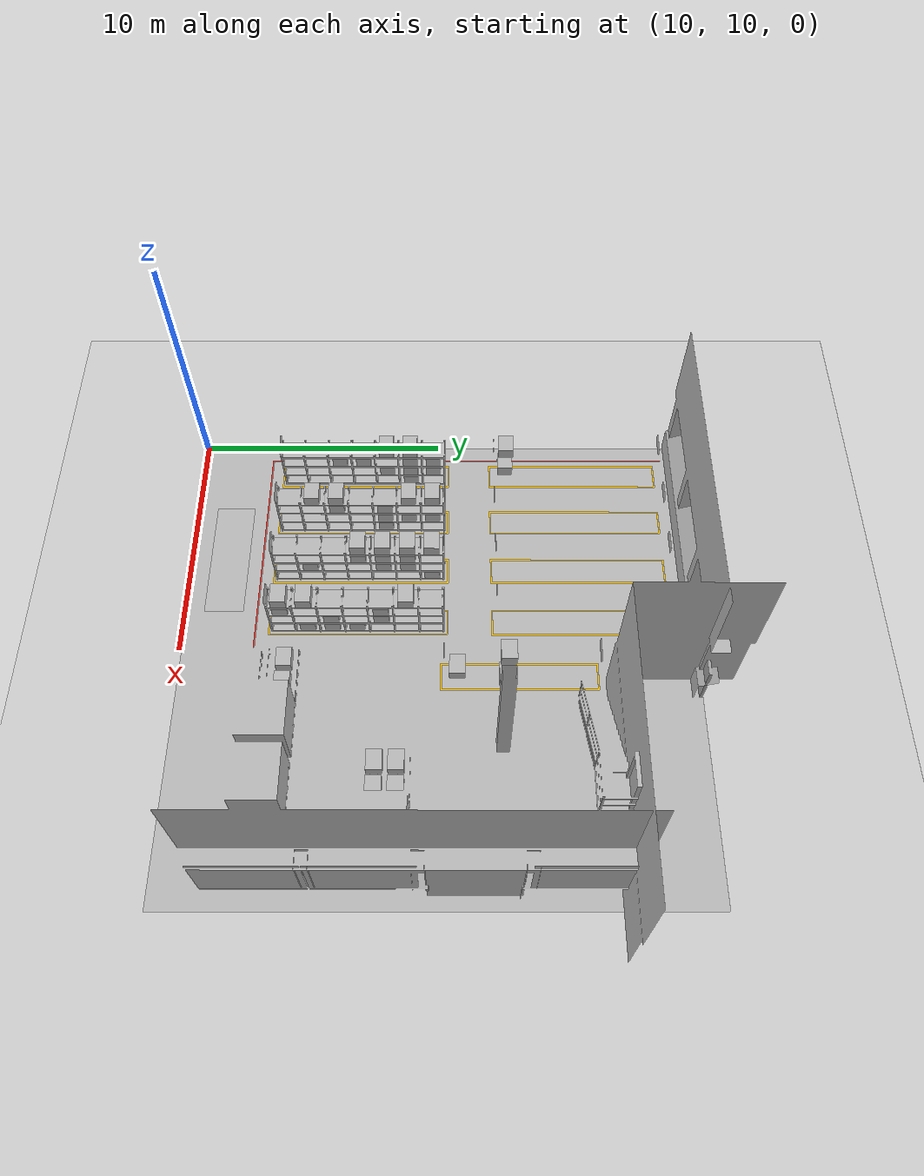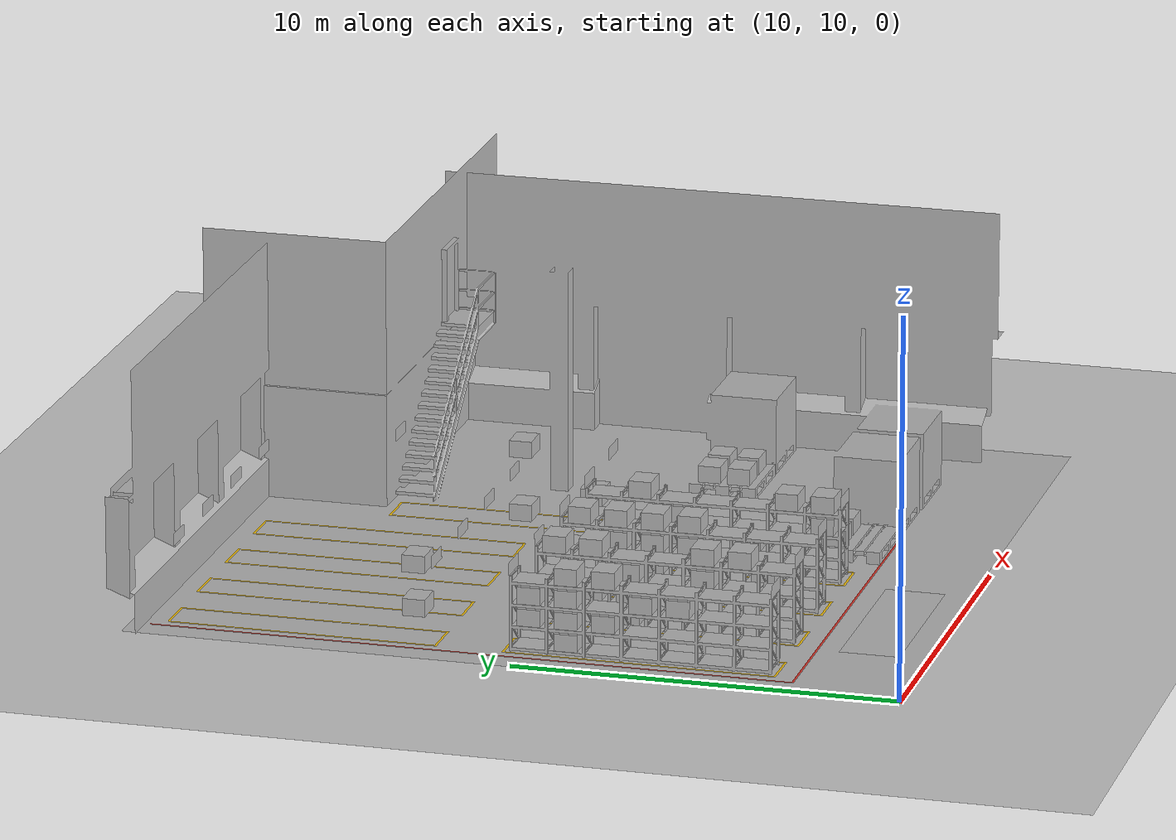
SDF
<sdf version="1.6">
 <world name="default">
  <model name="ground_plane">
   <static>1</static>
   <link name="link">
    <collision name="collision">
     <geometry><plane><normal>0 0 1</normal><size>100 100</size></plane></geometry>
     <surface><friction><ode><mu>100</mu><mu2>50</mu2></ode></friction></surface>
    </collision>
    <visual name="visual">
     <cast_shadows>0</cast_shadows>
     <geometry><plane><normal>0 0 1</normal><size>100 100</size></plane></geometry>
     <material>
      <script><uri>file://media/materials/scripts/gazebo.material</uri><name>Gazebo/Grey</name></script>
     </material>
    </visual>
   </link>
  </model>
  <include>
   <name>zone_C_layout</name>
   <uri>model://zone_c_layout</uri>
   <pose>20.062 20.155 0 0 0 3.1416</pose>
  </include>
  <model name="box_C_008">
   <pose>21.162 22.772 0.327 0 0 3.1416</pose>
   <link name="link">
    <inertial>
     <mass>8.0</mass>
     <inertia><ixx>0.37500</ixx><iyy>0.54060</iyy><izz>0.64560</izz><ixy>0</ixy><ixz>0</ixz><iyz>0</iyz></inertia>
    </inertial>
    <collision name="collision">
     <geometry><box><size>0.78 0.6 0.45</size></box></geometry>
     <surface><friction><ode><mu>1.0</mu><mu2>1.0</mu2></ode></friction></surface>
    </collision>
    <visual name="visual">
     <cast_shadows>0</cast_shadows>
     <geometry><box><size>0.78 0.6 0.45</size></box></geometry>
     <material>
      <script>
       <uri>model://labeled_boxes/materials/scripts</uri>
       <uri>model://labeled_boxes/materials/textures</uri>
       <name>LabeledBox/C-008</name>
      </script>
     </material>
    </visual>
   </link>
  </model>
  <model name="box_C_009">
   <pose>21.162 22.772 2.067 0 0 3.1416</pose>
   <link name="link">
    <inertial>
     <mass>8.0</mass>
     <inertia><ixx>0.37500</ixx><iyy>0.54060</iyy><izz>0.64560</izz><ixy>0</ixy><ixz>0</ixz><iyz>0</iyz></inertia>
    </inertial>
    <collision name="collision">
     <geometry><box><size>0.78 0.6 0.45</size></box></geometry>
     <surface><friction><ode><mu>1.0</mu><mu2>1.0</mu2></ode></friction></surface>
    </collision>
    <visual name="visual">
     <cast_shadows>0</cast_shadows>
     <geometry><box><size>0.78 0.6 0.45</size></box></geometry>
     <material>
      <script>
       <uri>model://labeled_boxes/materials/scripts</uri>
       <uri>model://labeled_boxes/materials/textures</uri>
       <name>LabeledBox/C-009</name>
      </script>
     </material>
    </visual>
   </link>
  </model>
  <model name="box_C_010">
   <pose>21.162 20.856 0.907 0 0 3.1416</pose>
   <link name="link">
    <inertial>
     <mass>8.0</mass>
     <inertia><ixx>0.37500</ixx><iyy>0.54060</iyy><izz>0.64560</izz><ixy>0</ixy><ixz>0</ixz><iyz>0</iyz></inertia>
    </inertial>
    <collision name="collision">
     <geometry><box><size>0.78 0.6 0.45</size></box></geometry>
     <surface><friction><ode><mu>1.0</mu><mu2>1.0</mu2></ode></friction></surface>
    </collision>
    <visual name="visual">
     <cast_shadows>0</cast_shadows>
     <geometry><box><size>0.78 0.6 0.45</size></box></geometry>
     <material>
      <script>
       <uri>model://labeled_boxes/materials/scripts</uri>
       <uri>model://labeled_boxes/materials/textures</uri>
       <name>LabeledBox/C-010</name>
      </script>
     </material>
    </visual>
   </link>
  </model>
  <include>
   <name>rack_C2_1</name>
   <uri>model://warehouse_rack_4lvl_7bay</uri>
   <pose>18.762 16.955 0 0 0 3.1416</pose>
  </include>
  <model name="box_C_025">
   <pose>18.762 18.898 2.067 0 0 3.1416</pose>
   <link name="link">
    <inertial>
     <mass>8.0</mass>
     <inertia><ixx>0.37500</ixx><iyy>0.54060</iyy><izz>0.64560</izz><ixy>0</ixy><ixz>0</ixz><iyz>0</iyz></inertia>
    </inertial>
    <collision name="collision">
     <geometry><box><size>0.78 0.6 0.45</size></box></geometry>
     <surface><friction><ode><mu>1.0</mu><mu2>1.0</mu2></ode></friction></surface>
    </collision>
    <visual name="visual">
     <cast_shadows>0</cast_shadows>
     <geometry><box><size>0.78 0.6 0.45</size></box></geometry>
     <material>
      <script>
       <uri>model://labeled_boxes/materials/scripts</uri>
       <uri>model://labeled_boxes/materials/textures</uri>
       <name>LabeledBox/C-025</name>
      </script>
     </material>
    </visual>
   </link>
  </model>
  <model name="box_C_026">
   <pose>18.762 17.926 0.907 0 0 3.1416</pose>
   <link name="link">
    <inertial>
     <mass>8.0</mass>
     <inertia><ixx>0.37500</ixx><iyy>0.54060</iyy><izz>0.64560</izz><ixy>0</ixy><ixz>0</ixz><iyz>0</iyz></inertia>
    </inertial>
    <collision name="collision">
     <geometry><box><size>0.78 0.6 0.45</size></box></geometry>
     <surface><friction><ode><mu>1.0</mu><mu2>1.0</mu2></ode></friction></surface>
    </collision>
    <visual name="visual">
     <cast_shadows>0</cast_shadows>
     <geometry><box><size>0.78 0.6 0.45</size></box></geometry>
     <material>
      <script>
       <uri>model://labeled_boxes/materials/scripts</uri>
       <uri>model://labeled_boxes/materials/textures</uri>
       <name>LabeledBox/C-026</name>
      </script>
     </material>
    </visual>
   </link>
  </model>
  <model name="box_C_027">
   <pose>18.762 17.926 1.487 0 0 3.1416</pose>
   <link name="link">
    <inertial>
     <mass>8.0</mass>
     <inertia><ixx>0.37500</ixx><iyy>0.54060</iyy><izz>0.64560</izz><ixy>0</ixy><ixz>0</ixz><iyz>0</iyz></inertia>
    </inertial>
    <collision name="collision">
     <geometry><box><size>0.78 0.6 0.45</size></box></geometry>
     <surface><friction><ode><mu>1.0</mu><mu2>1.0</mu2></ode></friction></surface>
    </collision>
    <visual name="visual">
     <cast_shadows>0</cast_shadows>
     <geometry><box><size>0.78 0.6 0.45</size></box></geometry>
     <material>
      <script>
       <uri>model://labeled_boxes/materials/scripts</uri>
       <uri>model://labeled_boxes/materials/textures</uri>
       <name>LabeledBox/C-027</name>
      </script>
     </material>
    </visual>
   </link>
  </model>
  <model name="box_C_028">
   <pose>18.762 16.955 0.327 0 0 3.1416</pose>
   <link name="link">
    <inertial>
     <mass>8.0</mass>
     <inertia><ixx>0.37500</ixx><iyy>0.54060</iyy><izz>0.64560</izz><ixy>0</ixy><ixz>0</ixz><iyz>0</iyz></inertia>
    </inertial>
    <collision name="collision">
     <geometry><box><size>0.78 0.6 0.45</size></box></geometry>
     <surface><friction><ode><mu>1.0</mu><mu2>1.0</mu2></ode></friction></surface>
    </collision>
    <visual name="visual">
     <cast_shadows>0</cast_shadows>
     <geometry><box><size>0.78 0.6 0.45</size></box></geometry>
     <material>
      <script>
       <uri>model://labeled_boxes/materials/scripts</uri>
       <uri>model://labeled_boxes/materials/textures</uri>
       <name>LabeledBox/C-028</name>
      </script>
     </material>
    </visual>
   </link>
  </model>
  <model name="box_C_029">
   <pose>18.762 15.983 0.327 0 0 3.1416</pose>
   <link name="link">
    <inertial>
     <mass>8.0</mass>
     <inertia><ixx>0.37500</ixx><iyy>0.54060</iyy><izz>0.64560</izz><ixy>0</ixy><ixz>0</ixz><iyz>0</iyz></inertia>
    </inertial>
    <collision name="collision">
     <geometry><box><size>0.78 0.6 0.45</size></box></geometry>
     <surface><friction><ode><mu>1.0</mu><mu2>1.0</mu2></ode></friction></surface>
    </collision>
    <visual name="visual">
     <cast_shadows>0</cast_shadows>
     <geometry><box><size>0.78 0.6 0.45</size></box></geometry>
     <material>
      <script>
       <uri>model://labeled_boxes/materials/scripts</uri>
       <uri>model://labeled_boxes/materials/textures</uri>
       <name>LabeledBox/C-029</name>
      </script>
     </material>
    </visual>
   </link>
  </model>
  <model name="box_C_030">
   <pose>18.762 15.983 0.907 0 0 3.1416</pose>
   <link name="link">
    <inertial>
     <mass>8.0</mass>
     <inertia><ixx>0.37500</ixx><iyy>0.54060</iyy><izz>0.64560</izz><ixy>0</ixy><ixz>0</ixz><iyz>0</iyz></inertia>
    </inertial>
    <collision name="collision">
     <geometry><box><size>0.78 0.6 0.45</size></box></geometry>
     <surface><friction><ode><mu>1.0</mu><mu2>1.0</mu2></ode></friction></surface>
    </collision>
    <visual name="visual">
     <cast_shadows>0</cast_shadows>
     <geometry><box><size>0.78 0.6 0.45</size></box></geometry>
     <material>
      <script>
       <uri>model://labeled_boxes/materials/scripts</uri>
       <uri>model://labeled_boxes/materials/textures</uri>
       <name>LabeledBox/C-030</name>
      </script>
     </material>
    </visual>
   </link>
  </model>
  <model name="box_C_031">
   <pose>18.762 15.012 0.327 0 0 3.1416</pose>
   <link name="link">
    <inertial>
     <mass>8.0</mass>
     <inertia><ixx>0.37500</ixx><iyy>0.54060</iyy><izz>0.64560</izz><ixy>0</ixy><ixz>0</ixz><iyz>0</iyz></inertia>
    </inertial>
    <collision name="collision">
     <geometry><box><size>0.78 0.6 0.45</size></box></geometry>
     <surface><friction><ode><mu>1.0</mu><mu2>1.0</mu2></ode></friction></surface>
    </collision>
    <visual name="visual">
     <cast_shadows>0</cast_shadows>
     <geometry><box><size>0.78 0.6 0.45</size></box></geometry>
     <material>
      <script>
       <uri>model://labeled_boxes/materials/scripts</uri>
       <uri>model://labeled_boxes/materials/textures</uri>
       <name>LabeledBox/C-031</name>
      </script>
     </material>
    </visual>
   </link>
  </model>
  <model name="box_C_032">
   <pose>18.762 15.012 2.067 0 0 3.1416</pose>
   <link name="link">
    <inertial>
     <mass>8.0</mass>
     <inertia><ixx>0.37500</ixx><iyy>0.54060</iyy><izz>0.64560</izz><ixy>0</ixy><ixz>0</ixz><iyz>0</iyz></inertia>
    </inertial>
    <collision name="collision">
     <geometry><box><size>0.78 0.6 0.45</size></box></geometry>
     <surface><friction><ode><mu>1.0</mu><mu2>1.0</mu2></ode></friction></surface>
    </collision>
    <visual name="visual">
     <cast_shadows>0</cast_shadows>
     <geometry><box><size>0.78 0.6 0.45</size></box></geometry>
     <material>
      <script>
       <uri>model://labeled_boxes/materials/scripts</uri>
       <uri>model://labeled_boxes/materials/textures</uri>
       <name>LabeledBox/C-032</name>
      </script>
     </material>
    </visual>
   </link>
  </model>
  <model name="box_C_034">
   <pose>18.762 14.058 1.487 0 0 3.1416</pose>
   <link name="link">
    <inertial>
     <mass>8.0</mass>
     <inertia><ixx>0.37500</ixx><iyy>0.54060</iyy><izz>0.64560</izz><ixy>0</ixy><ixz>0</ixz><iyz>0</iyz></inertia>
    </inertial>
    <collision name="collision">
     <geometry><box><size>0.78 0.6 0.45</size></box></geometry>
     <surface><friction><ode><mu>1.0</mu><mu2>1.0</mu2></ode></friction></surface>
    </collision>
    <visual name="visual">
     <cast_shadows>0</cast_shadows>
     <geometry><box><size>0.78 0.6 0.45</size></box></geometry>
     <material>
      <script>
       <uri>model://labeled_boxes/materials/scripts</uri>
       <uri>model://labeled_boxes/materials/textures</uri>
       <name>LabeledBox/C-034</name>
      </script>
     </material>
    </visual>
   </link>
  </model>
  <model name="box_C_035">
   <pose>18.762 14.058 2.067 0 0 3.1416</pose>
   <link name="link">
    <inertial>
     <mass>8.0</mass>
     <inertia><ixx>0.37500</ixx><iyy>0.54060</iyy><izz>0.64560</izz><ixy>0</ixy><ixz>0</ixz><iyz>0</iyz></inertia>
    </inertial>
    <collision name="collision">
     <geometry><box><size>0.78 0.6 0.45</size></box></geometry>
     <surface><friction><ode><mu>1.0</mu><mu2>1.0</mu2></ode></friction></surface>
    </collision>
    <visual name="visual">
     <cast_shadows>0</cast_shadows>
     <geometry><box><size>0.78 0.6 0.45</size></box></geometry>
     <material>
      <script>
       <uri>model://labeled_boxes/materials/scripts</uri>
       <uri>model://labeled_boxes/materials/textures</uri>
       <name>LabeledBox/C-035</name>
      </script>
     </material>
    </visual>
   </link>
  </model>
  <include>
   <name>rack_C3_1</name>
   <uri>model://warehouse_rack_4lvl_7bay</uri>
   <pose>16.362 16.955 0 0 0 3.1416</pose>
  </include>
  <model name="box_C_046">
   <pose>16.362 19.852 0.327 0 0 3.1416</pose>
   <link name="link">
    <inertial>
     <mass>8.0</mass>
     <inertia><ixx>0.37500</ixx><iyy>0.54060</iyy><izz>0.64560</izz><ixy>0</ixy><ixz>0</ixz><iyz>0</iyz></inertia>
    </inertial>
    <collision name="collision">
     <geometry><box><size>0.78 0.6 0.45</size></box></geometry>
     <surface><friction><ode><mu>1.0</mu><mu2>1.0</mu2></ode></friction></surface>
    </collision>
    <visual name="visual">
     <cast_shadows>0</cast_shadows>
     <geometry><box><size>0.78 0.6 0.45</size></box></geometry>
     <material>
      <script>
       <uri>model://labeled_boxes/materials/scripts</uri>
       <uri>model://labeled_boxes/materials/textures</uri>
       <name>LabeledBox/C-046</name>
      </script>
     </material>
    </visual>
   </link>
  </model>
  <model name="box_C_047">
   <pose>16.362 19.852 2.067 0 0 3.1416</pose>
   <link name="link">
    <inertial>
     <mass>8.0</mass>
     <inertia><ixx>0.37500</ixx><iyy>0.54060</iyy><izz>0.64560</izz><ixy>0</ixy><ixz>0</ixz><iyz>0</iyz></inertia>
    </inertial>
    <collision name="collision">
     <geometry><box><size>0.78 0.6 0.45</size></box></geometry>
     <surface><friction><ode><mu>1.0</mu><mu2>1.0</mu2></ode></friction></surface>
    </collision>
    <visual name="visual">
     <cast_shadows>0</cast_shadows>
     <geometry><box><size>0.78 0.6 0.45</size></box></geometry>
     <material>
      <script>
       <uri>model://labeled_boxes/materials/scripts</uri>
       <uri>model://labeled_boxes/materials/textures</uri>
       <name>LabeledBox/C-047</name>
      </script>
     </material>
    </visual>
   </link>
  </model>
  <model name="box_C_048">
   <pose>16.362 18.898 0.907 0 0 3.1416</pose>
   <link name="link">
    <inertial>
     <mass>8.0</mass>
     <inertia><ixx>0.37500</ixx><iyy>0.54060</iyy><izz>0.64560</izz><ixy>0</ixy><ixz>0</ixz><iyz>0</iyz></inertia>
    </inertial>
    <collision name="collision">
     <geometry><box><size>0.78 0.6 0.45</size></box></geometry>
     <surface><friction><ode><mu>1.0</mu><mu2>1.0</mu2></ode></friction></surface>
    </collision>
    <visual name="visual">
     <cast_shadows>0</cast_shadows>
     <geometry><box><size>0.78 0.6 0.45</size></box></geometry>
     <material>
      <script>
       <uri>model://labeled_boxes/materials/scripts</uri>
       <uri>model://labeled_boxes/materials/textures</uri>
       <name>LabeledBox/C-048</name>
      </script>
     </material>
    </visual>
   </link>
  </model>
  <model name="box_C_049">
   <pose>16.362 18.898 1.487 0 0 3.1416</pose>
   <link name="link">
    <inertial>
     <mass>8.0</mass>
     <inertia><ixx>0.37500</ixx><iyy>0.54060</iyy><izz>0.64560</izz><ixy>0</ixy><ixz>0</ixz><iyz>0</iyz></inertia>
    </inertial>
    <collision name="collision">
     <geometry><box><size>0.78 0.6 0.45</size></box></geometry>
     <surface><friction><ode><mu>1.0</mu><mu2>1.0</mu2></ode></friction></surface>
    </collision>
    <visual name="visual">
     <cast_shadows>0</cast_shadows>
     <geometry><box><size>0.78 0.6 0.45</size></box></geometry>
     <material>
      <script>
       <uri>model://labeled_boxes/materials/scripts</uri>
       <uri>model://labeled_boxes/materials/textures</uri>
       <name>LabeledBox/C-049</name>
      </script>
     </material>
    </visual>
   </link>
  </model>
  <model name="box_C_050">
   <pose>16.362 18.898 2.067 0 0 3.1416</pose>
   <link name="link">
    <inertial>
     <mass>8.0</mass>
     <inertia><ixx>0.37500</ixx><iyy>0.54060</iyy><izz>0.64560</izz><ixy>0</ixy><ixz>0</ixz><iyz>0</iyz></inertia>
    </inertial>
    <collision name="collision">
     <geometry><box><size>0.78 0.6 0.45</size></box></geometry>
     <surface><friction><ode><mu>1.0</mu><mu2>1.0</mu2></ode></friction></surface>
    </collision>
    <visual name="visual">
     <cast_shadows>0</cast_shadows>
     <geometry><box><size>0.78 0.6 0.45</size></box></geometry>
     <material>
      <script>
       <uri>model://labeled_boxes/materials/scripts</uri>
       <uri>model://labeled_boxes/materials/textures</uri>
       <name>LabeledBox/C-050</name>
      </script>
     </material>
    </visual>
   </link>
  </model>
  <model name="box_C_051">
   <pose>16.362 17.926 0.907 0 0 3.1416</pose>
   <link name="link">
    <inertial>
     <mass>8.0</mass>
     <inertia><ixx>0.37500</ixx><iyy>0.54060</iyy><izz>0.64560</izz><ixy>0</ixy><ixz>0</ixz><iyz>0</iyz></inertia>
    </inertial>
    <collision name="collision">
     <geometry><box><size>0.78 0.6 0.45</size></box></geometry>
     <surface><friction><ode><mu>1.0</mu><mu2>1.0</mu2></ode></friction></surface>
    </collision>
    <visual name="visual">
     <cast_shadows>0</cast_shadows>
     <geometry><box><size>0.78 0.6 0.45</size></box></geometry>
     <material>
      <script>
       <uri>model://labeled_boxes/materials/scripts</uri>
       <uri>model://labeled_boxes/materials/textures</uri>
       <name>LabeledBox/C-051</name>
      </script>
     </material>
    </visual>
   </link>
  </model>
  <model name="box_C_052">
   <pose>16.362 17.926 1.487 0 0 3.1416</pose>
   <link name="link">
    <inertial>
     <mass>8.0</mass>
     <inertia><ixx>0.37500</ixx><iyy>0.54060</iyy><izz>0.64560</izz><ixy>0</ixy><ixz>0</ixz><iyz>0</iyz></inertia>
    </inertial>
    <collision name="collision">
     <geometry><box><size>0.78 0.6 0.45</size></box></geometry>
     <surface><friction><ode><mu>1.0</mu><mu2>1.0</mu2></ode></friction></surface>
    </collision>
    <visual name="visual">
     <cast_shadows>0</cast_shadows>
     <geometry><box><size>0.78 0.6 0.45</size></box></geometry>
     <material>
      <script>
       <uri>model://labeled_boxes/materials/scripts</uri>
       <uri>model://labeled_boxes/materials/textures</uri>
       <name>LabeledBox/C-052</name>
      </script>
     </material>
    </visual>
   </link>
  </model>
  <model name="box_C_053">
   <pose>16.362 17.926 2.067 0 0 3.1416</pose>
   <link name="link">
    <inertial>
     <mass>8.0</mass>
     <inertia><ixx>0.37500</ixx><iyy>0.54060</iyy><izz>0.64560</izz><ixy>0</ixy><ixz>0</ixz><iyz>0</iyz></inertia>
    </inertial>
    <collision name="collision">
     <geometry><box><size>0.78 0.6 0.45</size></box></geometry>
     <surface><friction><ode><mu>1.0</mu><mu2>1.0</mu2></ode></friction></surface>
    </collision>
    <visual name="visual">
     <cast_shadows>0</cast_shadows>
     <geometry><box><size>0.78 0.6 0.45</size></box></geometry>
     <material>
      <script>
       <uri>model://labeled_boxes/materials/scripts</uri>
       <uri>model://labeled_boxes/materials/textures</uri>
       <name>LabeledBox/C-053</name>
      </script>
     </material>
    </visual>
   </link>
  </model>
  <model name="box_C_054">
   <pose>16.362 16.955 1.487 0 0 3.1416</pose>
   <link name="link">
    <inertial>
     <mass>8.0</mass>
     <inertia><ixx>0.37500</ixx><iyy>0.54060</iyy><izz>0.64560</izz><ixy>0</ixy><ixz>0</ixz><iyz>0</iyz></inertia>
    </inertial>
    <collision name="collision">
     <geometry><box><size>0.78 0.6 0.45</size></box></geometry>
     <surface><friction><ode><mu>1.0</mu><mu2>1.0</mu2></ode></friction></surface>
    </collision>
    <visual name="visual">
     <cast_shadows>0</cast_shadows>
     <geometry><box><size>0.78 0.6 0.45</size></box></geometry>
     <material>
      <script>
       <uri>model://labeled_boxes/materials/scripts</uri>
       <uri>model://labeled_boxes/materials/textures</uri>
       <name>LabeledBox/C-054</name>
      </script>
     </material>
    </visual>
   </link>
  </model>
  <model name="box_C_055">
   <pose>16.362 16.955 2.067 0 0 3.1416</pose>
   <link name="link">
    <inertial>
     <mass>8.0</mass>
     <inertia><ixx>0.37500</ixx><iyy>0.54060</iyy><izz>0.64560</izz><ixy>0</ixy><ixz>0</ixz><iyz>0</iyz></inertia>
    </inertial>
    <collision name="collision">
     <geometry><box><size>0.78 0.6 0.45</size></box></geometry>
     <surface><friction><ode><mu>1.0</mu><mu2>1.0</mu2></ode></friction></surface>
    </collision>
    <visual name="visual">
     <cast_shadows>0</cast_shadows>
     <geometry><box><size>0.78 0.6 0.45</size></box></geometry>
     <material>
      <script>
       <uri>model://labeled_boxes/materials/scripts</uri>
       <uri>model://labeled_boxes/materials/textures</uri>
       <name>LabeledBox/C-055</name>
      </script>
     </material>
    </visual>
   </link>
  </model>
  <model name="box_C_056">
   <pose>16.362 15.012 0.907 0 0 3.1416</pose>
   <link name="link">
    <inertial>
     <mass>8.0</mass>
     <inertia><ixx>0.37500</ixx><iyy>0.54060</iyy><izz>0.64560</izz><ixy>0</ixy><ixz>0</ixz><iyz>0</iyz></inertia>
    </inertial>
    <collision name="collision">
     <geometry><box><size>0.78 0.6 0.45</size></box></geometry>
     <surface><friction><ode><mu>1.0</mu><mu2>1.0</mu2></ode></friction></surface>
    </collision>
    <visual name="visual">
     <cast_shadows>0</cast_shadows>
     <geometry><box><size>0.78 0.6 0.45</size></box></geometry>
     <material>
      <script>
       <uri>model://labeled_boxes/materials/scripts</uri>
       <uri>model://labeled_boxes/materials/textures</uri>
       <name>LabeledBox/C-056</name>
      </script>
     </material>
    </visual>
   </link>
  </model>
  <include>
   <name>rack_C4_1</name>
   <uri>model://warehouse_rack_4lvl_7bay</uri>
   <pose>13.962 16.955 0 0 0 3.1416</pose>
  </include>
  <model name="box_C_071">
   <pose>13.962 19.852 0.907 0 0 3.1416</pose>
   <link name="link">
    <inertial>
     <mass>8.0</mass>
     <inertia><ixx>0.37500</ixx><iyy>0.54060</iyy><izz>0.64560</izz><ixy>0</ixy><ixz>0</ixz><iyz>0</iyz></inertia>
    </inertial>
    <collision name="collision">
     <geometry><box><size>0.78 0.6 0.45</size></box></geometry>
     <surface><friction><ode><mu>1.0</mu><mu2>1.0</mu2></ode></friction></surface>
    </collision>
    <visual name="visual">
     <cast_shadows>0</cast_shadows>
     <geometry><box><size>0.78 0.6 0.45</size></box></geometry>
     <material>
      <script>
       <uri>model://labeled_boxes/materials/scripts</uri>
       <uri>model://labeled_boxes/materials/textures</uri>
       <name>LabeledBox/C-071</name>
      </script>
     </material>
    </visual>
   </link>
  </model>
  <model name="box_C_072">
   <pose>13.962 19.852 2.067 0 0 3.1416</pose>
   <link name="link">
    <inertial>
     <mass>8.0</mass>
     <inertia><ixx>0.37500</ixx><iyy>0.54060</iyy><izz>0.64560</izz><ixy>0</ixy><ixz>0</ixz><iyz>0</iyz></inertia>
    </inertial>
    <collision name="collision">
     <geometry><box><size>0.78 0.6 0.45</size></box></geometry>
     <surface><friction><ode><mu>1.0</mu><mu2>1.0</mu2></ode></friction></surface>
    </collision>
    <visual name="visual">
     <cast_shadows>0</cast_shadows>
     <geometry><box><size>0.78 0.6 0.45</size></box></geometry>
     <material>
      <script>
       <uri>model://labeled_boxes/materials/scripts</uri>
       <uri>model://labeled_boxes/materials/textures</uri>
       <name>LabeledBox/C-072</name>
      </script>
     </material>
    </visual>
   </link>
  </model>
  <model name="box_C_073">
   <pose>13.962 18.898 0.907 0 0 3.1416</pose>
   <link name="link">
    <inertial>
     <mass>8.0</mass>
     <inertia><ixx>0.37500</ixx><iyy>0.54060</iyy><izz>0.64560</izz><ixy>0</ixy><ixz>0</ixz><iyz>0</iyz></inertia>
    </inertial>
    <collision name="collision">
     <geometry><box><size>0.78 0.6 0.45</size></box></geometry>
     <surface><friction><ode><mu>1.0</mu><mu2>1.0</mu2></ode></friction></surface>
    </collision>
    <visual name="visual">
     <cast_shadows>0</cast_shadows>
     <geometry><box><size>0.78 0.6 0.45</size></box></geometry>
     <material>
      <script>
       <uri>model://labeled_boxes/materials/scripts</uri>
       <uri>model://labeled_boxes/materials/textures</uri>
       <name>LabeledBox/C-073</name>
      </script>
     </material>
    </visual>
   </link>
  </model>
  <model name="box_C_074">
   <pose>13.962 18.898 2.067 0 0 3.1416</pose>
   <link name="link">
    <inertial>
     <mass>8.0</mass>
     <inertia><ixx>0.37500</ixx><iyy>0.54060</iyy><izz>0.64560</izz><ixy>0</ixy><ixz>0</ixz><iyz>0</iyz></inertia>
    </inertial>
    <collision name="collision">
     <geometry><box><size>0.78 0.6 0.45</size></box></geometry>
     <surface><friction><ode><mu>1.0</mu><mu2>1.0</mu2></ode></friction></surface>
    </collision>
    <visual name="visual">
     <cast_shadows>0</cast_shadows>
     <geometry><box><size>0.78 0.6 0.45</size></box></geometry>
     <material>
      <script>
       <uri>model://labeled_boxes/materials/scripts</uri>
       <uri>model://labeled_boxes/materials/textures</uri>
       <name>LabeledBox/C-074</name>
      </script>
     </material>
    </visual>
   </link>
  </model>
  <model name="box_C_075">
   <pose>13.962 17.926 0.327 0 0 3.1416</pose>
   <link name="link">
    <inertial>
     <mass>8.0</mass>
     <inertia><ixx>0.37500</ixx><iyy>0.54060</iyy><izz>0.64560</izz><ixy>0</ixy><ixz>0</ixz><iyz>0</iyz></inertia>
    </inertial>
    <collision name="collision">
     <geometry><box><size>0.78 0.6 0.45</size></box></geometry>
     <surface><friction><ode><mu>1.0</mu><mu2>1.0</mu2></ode></friction></surface>
    </collision>
    <visual name="visual">
     <cast_shadows>0</cast_shadows>
     <geometry><box><size>0.78 0.6 0.45</size></box></geometry>
     <material>
      <script>
       <uri>model://labeled_boxes/materials/scripts</uri>
       <uri>model://labeled_boxes/materials/textures</uri>
       <name>LabeledBox/C-075</name>
      </script>
     </material>
    </visual>
   </link>
  </model>
  <model name="box_C_076">
   <pose>13.962 17.926 0.907 0 0 3.1416</pose>
   <link name="link">
    <inertial>
     <mass>8.0</mass>
     <inertia><ixx>0.37500</ixx><iyy>0.54060</iyy><izz>0.64560</izz><ixy>0</ixy><ixz>0</ixz><iyz>0</iyz></inertia>
    </inertial>
    <collision name="collision">
     <geometry><box><size>0.78 0.6 0.45</size></box></geometry>
     <surface><friction><ode><mu>1.0</mu><mu2>1.0</mu2></ode></friction></surface>
    </collision>
    <visual name="visual">
     <cast_shadows>0</cast_shadows>
     <geometry><box><size>0.78 0.6 0.45</size></box></geometry>
     <material>
      <script>
       <uri>model://labeled_boxes/materials/scripts</uri>
       <uri>model://labeled_boxes/materials/textures</uri>
       <name>LabeledBox/C-076</name>
      </script>
     </material>
    </visual>
   </link>
  </model>
  <model name="box_C_077">
   <pose>13.962 17.926 1.487 0 0 3.1416</pose>
   <link name="link">
    <inertial>
     <mass>8.0</mass>
     <inertia><ixx>0.37500</ixx><iyy>0.54060</iyy><izz>0.64560</izz><ixy>0</ixy><ixz>0</ixz><iyz>0</iyz></inertia>
    </inertial>
    <collision name="collision">
     <geometry><box><size>0.78 0.6 0.45</size></box></geometry>
     <surface><friction><ode><mu>1.0</mu><mu2>1.0</mu2></ode></friction></surface>
    </collision>
    <visual name="visual">
     <cast_shadows>0</cast_shadows>
     <geometry><box><size>0.78 0.6 0.45</size></box></geometry>
     <material>
      <script>
       <uri>model://labeled_boxes/materials/scripts</uri>
       <uri>model://labeled_boxes/materials/textures</uri>
       <name>LabeledBox/C-077</name>
      </script>
     </material>
    </visual>
   </link>
  </model>
  <model name="box_C_078">
   <pose>13.962 15.983 1.487 0 0 3.1416</pose>
   <link name="link">
    <inertial>
     <mass>8.0</mass>
     <inertia><ixx>0.37500</ixx><iyy>0.54060</iyy><izz>0.64560</izz><ixy>0</ixy><ixz>0</ixz><iyz>0</iyz></inertia>
    </inertial>
    <collision name="collision">
     <geometry><box><size>0.78 0.6 0.45</size></box></geometry>
     <surface><friction><ode><mu>1.0</mu><mu2>1.0</mu2></ode></friction></surface>
    </collision>
    <visual name="visual">
     <cast_shadows>0</cast_shadows>
     <geometry><box><size>0.78 0.6 0.45</size></box></geometry>
     <material>
      <script>
       <uri>model://labeled_boxes/materials/scripts</uri>
       <uri>model://labeled_boxes/materials/textures</uri>
       <name>LabeledBox/C-078</name>
      </script>
     </material>
    </visual>
   </link>
  </model>
  <model name="box_C_079">
   <pose>13.962 15.983 2.067 0 0 3.1416</pose>
   <link name="link">
    <inertial>
     <mass>8.0</mass>
     <inertia><ixx>0.37500</ixx><iyy>0.54060</iyy><izz>0.64560</izz><ixy>0</ixy><ixz>0</ixz><iyz>0</iyz></inertia>
    </inertial>
    <collision name="collision">
     <geometry><box><size>0.78 0.6 0.45</size></box></geometry>
     <surface><friction><ode><mu>1.0</mu><mu2>1.0</mu2></ode></friction></surface>
    </collision>
    <visual name="visual">
     <cast_shadows>0</cast_shadows>
     <geometry><box><size>0.78 0.6 0.45</size></box></geometry>
     <material>
      <script>
       <uri>model://labeled_boxes/materials/scripts</uri>
       <uri>model://labeled_boxes/materials/textures</uri>
       <name>LabeledBox/C-079</name>
      </script>
     </material>
    </visual>
   </link>
  </model>
  <model name="box_C_080">
   <pose>13.962 15.012 2.067 0 0 3.1416</pose>
   <link name="link">
    <inertial>
     <mass>8.0</mass>
     <inertia><ixx>0.37500</ixx><iyy>0.54060</iyy><izz>0.64560</izz><ixy>0</ixy><ixz>0</ixz><iyz>0</iyz></inertia>
    </inertial>
    <collision name="collision">
     <geometry><box><size>0.78 0.6 0.45</size></box></geometry>
     <surface><friction><ode><mu>1.0</mu><mu2>1.0</mu2></ode></friction></surface>
    </collision>
    <visual name="visual">
     <cast_shadows>0</cast_shadows>
     <geometry><box><size>0.78 0.6 0.45</size></box></geometry>
     <material>
      <script>
       <uri>model://labeled_boxes/materials/scripts</uri>
       <uri>model://labeled_boxes/materials/textures</uri>
       <name>LabeledBox/C-080</name>
      </script>
     </material>
    </visual>
   </link>
  </model>
  <model name="box_C_091">
   <pose>11.562 22.858 0.907 0 0 3.1416</pose>
   <link name="link">
    <inertial>
     <mass>8.0</mass>
     <inertia><ixx>0.37500</ixx><iyy>0.54060</iyy><izz>0.64560</izz><ixy>0</ixy><ixz>0</ixz><iyz>0</iyz></inertia>
    </inertial>
    <collision name="collision">
     <geometry><box><size>0.78 0.6 0.45</size></box></geometry>
     <surface><friction><ode><mu>1.0</mu><mu2>1.0</mu2></ode></friction></surface>
    </collision>
    <visual name="visual">
     <cast_shadows>0</cast_shadows>
     <geometry><box><size>0.78 0.6 0.45</size></box></geometry>
     <material>
      <script>
       <uri>model://labeled_boxes/materials/scripts</uri>
       <uri>model://labeled_boxes/materials/textures</uri>
       <name>LabeledBox/C-091</name>
      </script>
     </material>
    </visual>
   </link>
  </model>
  <model name="box_C_092">
   <pose>11.562 22.858 2.067 0 0 3.1416</pose>
   <link name="link">
    <inertial>
     <mass>8.0</mass>
     <inertia><ixx>0.37500</ixx><iyy>0.54060</iyy><izz>0.64560</izz><ixy>0</ixy><ixz>0</ixz><iyz>0</iyz></inertia>
    </inertial>
    <collision name="collision">
     <geometry><box><size>0.78 0.6 0.45</size></box></geometry>
     <surface><friction><ode><mu>1.0</mu><mu2>1.0</mu2></ode></friction></surface>
    </collision>
    <visual name="visual">
     <cast_shadows>0</cast_shadows>
     <geometry><box><size>0.78 0.6 0.45</size></box></geometry>
     <material>
      <script>
       <uri>model://labeled_boxes/materials/scripts</uri>
       <uri>model://labeled_boxes/materials/textures</uri>
       <name>LabeledBox/C-092</name>
      </script>
     </material>
    </visual>
   </link>
  </model>
  <include>
   <name>rack_C5_1</name>
   <uri>model://warehouse_rack_4lvl_7bay</uri>
   <pose>11.562 16.955 0 0 0 3.1416</pose>
  </include>
  <model name="box_C_093">
   <pose>11.562 19.852 0.907 0 0 3.1416</pose>
   <link name="link">
    <inertial>
     <mass>8.0</mass>
     <inertia><ixx>0.37500</ixx><iyy>0.54060</iyy><izz>0.64560</izz><ixy>0</ixy><ixz>0</ixz><iyz>0</iyz></inertia>
    </inertial>
    <collision name="collision">
     <geometry><box><size>0.78 0.6 0.45</size></box></geometry>
     <surface><friction><ode><mu>1.0</mu><mu2>1.0</mu2></ode></friction></surface>
    </collision>
    <visual name="visual">
     <cast_shadows>0</cast_shadows>
     <geometry><box><size>0.78 0.6 0.45</size></box></geometry>
     <material>
      <script>
       <uri>model://labeled_boxes/materials/scripts</uri>
       <uri>model://labeled_boxes/materials/textures</uri>
       <name>LabeledBox/C-093</name>
      </script>
     </material>
    </visual>
   </link>
  </model>
  <model name="box_C_094">
   <pose>11.562 19.852 1.487 0 0 3.1416</pose>
   <link name="link">
    <inertial>
     <mass>8.0</mass>
     <inertia><ixx>0.37500</ixx><iyy>0.54060</iyy><izz>0.64560</izz><ixy>0</ixy><ixz>0</ixz><iyz>0</iyz></inertia>
    </inertial>
    <collision name="collision">
     <geometry><box><size>0.78 0.6 0.45</size></box></geometry>
     <surface><friction><ode><mu>1.0</mu><mu2>1.0</mu2></ode></friction></surface>
    </collision>
    <visual name="visual">
     <cast_shadows>0</cast_shadows>
     <geometry><box><size>0.78 0.6 0.45</size></box></geometry>
     <material>
      <script>
       <uri>model://labeled_boxes/materials/scripts</uri>
       <uri>model://labeled_boxes/materials/textures</uri>
       <name>LabeledBox/C-094</name>
      </script>
     </material>
    </visual>
   </link>
  </model>
  <model name="box_C_095">
   <pose>11.562 18.898 0.327 0 0 3.1416</pose>
   <link name="link">
    <inertial>
     <mass>8.0</mass>
     <inertia><ixx>0.37500</ixx><iyy>0.54060</iyy><izz>0.64560</izz><ixy>0</ixy><ixz>0</ixz><iyz>0</iyz></inertia>
    </inertial>
    <collision name="collision">
     <geometry><box><size>0.78 0.6 0.45</size></box></geometry>
     <surface><friction><ode><mu>1.0</mu><mu2>1.0</mu2></ode></friction></surface>
    </collision>
    <visual name="visual">
     <cast_shadows>0</cast_shadows>
     <geometry><box><size>0.78 0.6 0.45</size></box></geometry>
     <material>
      <script>
       <uri>model://labeled_boxes/materials/scripts</uri>
       <uri>model://labeled_boxes/materials/textures</uri>
       <name>LabeledBox/C-095</name>
      </script>
     </material>
    </visual>
   </link>
  </model>
  <model name="box_C_096">
   <pose>11.562 18.898 0.907 0 0 3.1416</pose>
   <link name="link">
    <inertial>
     <mass>8.0</mass>
     <inertia><ixx>0.37500</ixx><iyy>0.54060</iyy><izz>0.64560</izz><ixy>0</ixy><ixz>0</ixz><iyz>0</iyz></inertia>
    </inertial>
    <collision name="collision">
     <geometry><box><size>0.78 0.6 0.45</size></box></geometry>
     <surface><friction><ode><mu>1.0</mu><mu2>1.0</mu2></ode></friction></surface>
    </collision>
    <visual name="visual">
     <cast_shadows>0</cast_shadows>
     <geometry><box><size>0.78 0.6 0.45</size></box></geometry>
     <material>
      <script>
       <uri>model://labeled_boxes/materials/scripts</uri>
       <uri>model://labeled_boxes/materials/textures</uri>
       <name>LabeledBox/C-096</name>
      </script>
     </material>
    </visual>
   </link>
  </model>
  <model name="box_C_097">
   <pose>11.562 18.898 1.487 0 0 3.1416</pose>
   <link name="link">
    <inertial>
     <mass>8.0</mass>
     <inertia><ixx>0.37500</ixx><iyy>0.54060</iyy><izz>0.64560</izz><ixy>0</ixy><ixz>0</ixz><iyz>0</iyz></inertia>
    </inertial>
    <collision name="collision">
     <geometry><box><size>0.78 0.6 0.45</size></box></geometry>
     <surface><friction><ode><mu>1.0</mu><mu2>1.0</mu2></ode></friction></surface>
    </collision>
    <visual name="visual">
     <cast_shadows>0</cast_shadows>
     <geometry><box><size>0.78 0.6 0.45</size></box></geometry>
     <material>
      <script>
       <uri>model://labeled_boxes/materials/scripts</uri>
       <uri>model://labeled_boxes/materials/textures</uri>
       <name>LabeledBox/C-097</name>
      </script>
     </material>
    </visual>
   </link>
  </model>
  <model name="box_C_098">
   <pose>11.562 18.898 2.067 0 0 3.1416</pose>
   <link name="link">
    <inertial>
     <mass>8.0</mass>
     <inertia><ixx>0.37500</ixx><iyy>0.54060</iyy><izz>0.64560</izz><ixy>0</ixy><ixz>0</ixz><iyz>0</iyz></inertia>
    </inertial>
    <collision name="collision">
     <geometry><box><size>0.78 0.6 0.45</size></box></geometry>
     <surface><friction><ode><mu>1.0</mu><mu2>1.0</mu2></ode></friction></surface>
    </collision>
    <visual name="visual">
     <cast_shadows>0</cast_shadows>
     <geometry><box><size>0.78 0.6 0.45</size></box></geometry>
     <material>
      <script>
       <uri>model://labeled_boxes/materials/scripts</uri>
       <uri>model://labeled_boxes/materials/textures</uri>
       <name>LabeledBox/C-098</name>
      </script>
     </material>
    </visual>
   </link>
  </model>
  <model name="box_C_099">
   <pose>11.562 17.926 0.907 0 0 3.1416</pose>
   <link name="link">
    <inertial>
     <mass>8.0</mass>
     <inertia><ixx>0.37500</ixx><iyy>0.54060</iyy><izz>0.64560</izz><ixy>0</ixy><ixz>0</ixz><iyz>0</iyz></inertia>
    </inertial>
    <collision name="collision">
     <geometry><box><size>0.78 0.6 0.45</size></box></geometry>
     <surface><friction><ode><mu>1.0</mu><mu2>1.0</mu2></ode></friction></surface>
    </collision>
    <visual name="visual">
     <cast_shadows>0</cast_shadows>
     <geometry><box><size>0.78 0.6 0.45</size></box></geometry>
     <material>
      <script>
       <uri>model://labeled_boxes/materials/scripts</uri>
       <uri>model://labeled_boxes/materials/textures</uri>
       <name>LabeledBox/C-099</name>
      </script>
     </material>
    </visual>
   </link>
  </model>
  <model name="box_C_100">
   <pose>11.562 17.926 2.067 0 0 3.1416</pose>
   <link name="link">
    <inertial>
     <mass>8.0</mass>
     <inertia><ixx>0.37500</ixx><iyy>0.54060</iyy><izz>0.64560</izz><ixy>0</ixy><ixz>0</ixz><iyz>0</iyz></inertia>
    </inertial>
    <collision name="collision">
     <geometry><box><size>0.78 0.6 0.45</size></box></geometry>
     <surface><friction><ode><mu>1.0</mu><mu2>1.0</mu2></ode></friction></surface>
    </collision>
    <visual name="visual">
     <cast_shadows>0</cast_shadows>
     <geometry><box><size>0.78 0.6 0.45</size></box></geometry>
     <material>
      <script>
       <uri>model://labeled_boxes/materials/scripts</uri>
       <uri>model://labeled_boxes/materials/textures</uri>
       <name>LabeledBox/C-100</name>
      </script>
     </material>
    </visual>
   </link>
  </model>
  <model name="box_C_101">
   <pose>11.562 16.955 1.487 0 0 3.1416</pose>
   <link name="link">
    <inertial>
     <mass>8.0</mass>
     <inertia><ixx>0.37500</ixx><iyy>0.54060</iyy><izz>0.64560</izz><ixy>0</ixy><ixz>0</ixz><iyz>0</iyz></inertia>
    </inertial>
    <collision name="collision">
     <geometry><box><size>0.78 0.6 0.45</size></box></geometry>
     <surface><friction><ode><mu>1.0</mu><mu2>1.0</mu2></ode></friction></surface>
    </collision>
    <visual name="visual">
     <cast_shadows>0</cast_shadows>
     <geometry><box><size>0.78 0.6 0.45</size></box></geometry>
     <material>
      <script>
       <uri>model://labeled_boxes/materials/scripts</uri>
       <uri>model://labeled_boxes/materials/textures</uri>
       <name>LabeledBox/C-101</name>
      </script>
     </material>
    </visual>
   </link>
  </model>
  <model name="box_C_102">
   <pose>11.562 15.983 1.487 0 0 3.1416</pose>
   <link name="link">
    <inertial>
     <mass>8.0</mass>
     <inertia><ixx>0.37500</ixx><iyy>0.54060</iyy><izz>0.64560</izz><ixy>0</ixy><ixz>0</ixz><iyz>0</iyz></inertia>
    </inertial>
    <collision name="collision">
     <geometry><box><size>0.78 0.6 0.45</size></box></geometry>
     <surface><friction><ode><mu>1.0</mu><mu2>1.0</mu2></ode></friction></surface>
    </collision>
    <visual name="visual">
     <cast_shadows>0</cast_shadows>
     <geometry><box><size>0.78 0.6 0.45</size></box></geometry>
     <material>
      <script>
       <uri>model://labeled_boxes/materials/scripts</uri>
       <uri>model://labeled_boxes/materials/textures</uri>
       <name>LabeledBox/C-102</name>
      </script>
     </material>
    </visual>
   </link>
  </model>
  <model name="box_C_107">
   <pose>21.661 14.236 0.5542 0 0 3.1416</pose>
   <link name="link">
    <inertial>
     <mass>8.0</mass>
     <inertia><ixx>0.37500</ixx><iyy>0.54060</iyy><izz>0.64560</izz><ixy>0</ixy><ixz>0</ixz><iyz>0</iyz></inertia>
    </inertial>
    <collision name="collision">
     <geometry><box><size>0.78 0.6 0.45</size></box></geometry>
     <surface><friction><ode><mu>1.0</mu><mu2>1.0</mu2></ode></friction></surface>
    </collision>
    <visual name="visual">
     <cast_shadows>0</cast_shadows>
     <geometry><box><size>0.78 0.6 0.45</size></box></geometry>
     <material>
      <script>
       <uri>model://labeled_boxes/materials/scripts</uri>
       <uri>model://labeled_boxes/materials/textures</uri>
       <name>LabeledBox/C-107</name>
      </script>
     </material>
    </visual>
   </link>
  </model>
  <model name="box_C_109">
   <pose>20.661 14.236 0.5542 0 0 3.1416</pose>
   <link name="link">
    <inertial>
     <mass>8.0</mass>
     <inertia><ixx>0.37500</ixx><iyy>0.54060</iyy><izz>0.64560</izz><ixy>0</ixy><ixz>0</ixz><iyz>0</iyz></inertia>
    </inertial>
    <collision name="collision">
     <geometry><box><size>0.78 0.6 0.45</size></box></geometry>
     <surface><friction><ode><mu>1.0</mu><mu2>1.0</mu2></ode></friction></surface>
    </collision>
    <visual name="visual">
     <cast_shadows>0</cast_shadows>
     <geometry><box><size>0.78 0.6 0.45</size></box></geometry>
     <material>
      <script>
       <uri>model://labeled_boxes/materials/scripts</uri>
       <uri>model://labeled_boxes/materials/textures</uri>
       <name>LabeledBox/C-109</name>
      </script>
     </material>
    </visual>
   </link>
  </model>
  <model name="box_C_111">
   <pose>25.859 18.638 0.5542 0 0 3.1416</pose>
   <link name="link">
    <inertial>
     <mass>8.0</mass>
     <inertia><ixx>0.37500</ixx><iyy>0.54060</iyy><izz>0.64560</izz><ixy>0</ixy><ixz>0</ixz><iyz>0</iyz></inertia>
    </inertial>
    <collision name="collision">
     <geometry><box><size>0.78 0.6 0.45</size></box></geometry>
     <surface><friction><ode><mu>1.0</mu><mu2>1.0</mu2></ode></friction></surface>
    </collision>
    <visual name="visual">
     <cast_shadows>0</cast_shadows>
     <geometry><box><size>0.78 0.6 0.45</size></box></geometry>
     <material>
      <script>
       <uri>model://labeled_boxes/materials/scripts</uri>
       <uri>model://labeled_boxes/materials/textures</uri>
       <name>LabeledBox/C-111</name>
      </script>
     </material>
    </visual>
   </link>
  </model>
  <model name="box_C_112">
   <pose>25.859 17.838 0.5542 0 0 3.1416</pose>
   <link name="link">
    <inertial>
     <mass>8.0</mass>
     <inertia><ixx>0.37500</ixx><iyy>0.54060</iyy><izz>0.64560</izz><ixy>0</ixy><ixz>0</ixz><iyz>0</iyz></inertia>
    </inertial>
    <collision name="collision">
     <geometry><box><size>0.78 0.6 0.45</size></box></geometry>
     <surface><friction><ode><mu>1.0</mu><mu2>1.0</mu2></ode></friction></surface>
    </collision>
    <visual name="visual">
     <cast_shadows>0</cast_shadows>
     <geometry><box><size>0.78 0.6 0.45</size></box></geometry>
     <material>
      <script>
       <uri>model://labeled_boxes/materials/scripts</uri>
       <uri>model://labeled_boxes/materials/textures</uri>
       <name>LabeledBox/C-112</name>
      </script>
     </material>
    </visual>
   </link>
  </model>
  <model name="box_C_113">
   <pose>24.859 18.638 0.5542 0 0 3.1416</pose>
   <link name="link">
    <inertial>
     <mass>8.0</mass>
     <inertia><ixx>0.37500</ixx><iyy>0.54060</iyy><izz>0.64560</izz><ixy>0</ixy><ixz>0</ixz><iyz>0</iyz></inertia>
    </inertial>
    <collision name="collision">
     <geometry><box><size>0.78 0.6 0.45</size></box></geometry>
     <surface><friction><ode><mu>1.0</mu><mu2>1.0</mu2></ode></friction></surface>
    </collision>
    <visual name="visual">
     <cast_shadows>0</cast_shadows>
     <geometry><box><size>0.78 0.6 0.45</size></box></geometry>
     <material>
      <script>
       <uri>model://labeled_boxes/materials/scripts</uri>
       <uri>model://labeled_boxes/materials/textures</uri>
       <name>LabeledBox/C-113</name>
      </script>
     </material>
    </visual>
   </link>
  </model>
  <model name="box_C_114">
   <pose>24.859 17.838 0.5542 0 0 3.1416</pose>
   <link name="link">
    <inertial>
     <mass>8.0</mass>
     <inertia><ixx>0.37500</ixx><iyy>0.54060</iyy><izz>0.64560</izz><ixy>0</ixy><ixz>0</ixz><iyz>0</iyz></inertia>
    </inertial>
    <collision name="collision">
     <geometry><box><size>0.78 0.6 0.45</size></box></geometry>
     <surface><friction><ode><mu>1.0</mu><mu2>1.0</mu2></ode></friction></surface>
    </collision>
    <visual name="visual">
     <cast_shadows>0</cast_shadows>
     <geometry><box><size>0.78 0.6 0.45</size></box></geometry>
     <material>
      <script>
       <uri>model://labeled_boxes/materials/scripts</uri>
       <uri>model://labeled_boxes/materials/textures</uri>
       <name>LabeledBox/C-114</name>
      </script>
     </material>
    </visual>
   </link>
  </model>
  <model name="workcell_NE">
   <static>1</static>
   <link name="link">
    <visual name="visual">
     <geometry><mesh><uri>model://our_workcell/meshes/mesh.dae</uri></mesh></geometry>
    </visual>
    <collision name="floor">
     <pose>0 0 -0.1 0 -0 0</pose>
     <geometry><box><size>20.1026 20.1026 0.2</size></box></geometry>
     <surface><contact><ode><max_vel>0</max_vel><min_depth>0.001</min_depth></ode></contact></surface>
    </collision>
    <collision name="wall1">
     <pose>4.13686 -10.0212 3.48855 0 -0 0</pose>
     <geometry><box><size>12.0768 0.72902 6.97771</size></box></geometry>
    </collision>
    <collision name="wall2">
     <pose>-6.58151 -8.924 3.48855 0 -0 0</pose>
     <geometry><box><size>10.5921 5.00198 6.97771</size></box></geometry>
    </collision>
    <collision name="wall3">
     <pose>-9.25721 0.6135 3.48855 0 -0 0</pose>
     <geometry><box><size>0.72902 15.2908 6.97771</size></box></geometry>
    </collision>
    <collision name="large_pallet1">
     <pose>-3.33609 6.31883 1.04257 0 -0 0</pose>
     <geometry><box><size>2.14726 1.79349 2.08514</size></box></geometry>
    </collision>
    <collision name="large_pallet2">
     <pose>-5.74492 6.31883 1.04257 0 -0 0</pose>
     <geometry><box><size>2.14726 1.79349 2.08514</size></box></geometry>
    </collision>
    <collision name="large_pallet3">
     <pose>-7.55868 1.91644 1.04257 0 -0 0</pose>
     <geometry><box><size>2.14726 1.79432 2.08514</size></box></geometry>
    </collision>
    <collision name="empty_pallet1">
     <pose>-5.29667 1.91644 0.1636 0 -0 0</pose>
     <geometry><box><size>2.14726 1.79349 0.3272</size></box></geometry>
    </collision>
    <collision name="box_pallet1">
     <pose>-1.09806 6.31883 0.1636 0 -0 0</pose>
     <geometry><box><size>2.14726 1.79349 0.3272</size></box></geometry>
    </collision>
    <collision name="pole3">
     <pose>-3.93786 -2.39478 3.02208 0 -0 0</pose>
     <geometry><box><size>0.49161 0.49161 6.04415</size></box></geometry>
    </collision>
   </link>
   <pose>20.0625 20.1549 0 0 0 3.14159</pose>
  </model>
 </world>
</sdf>
